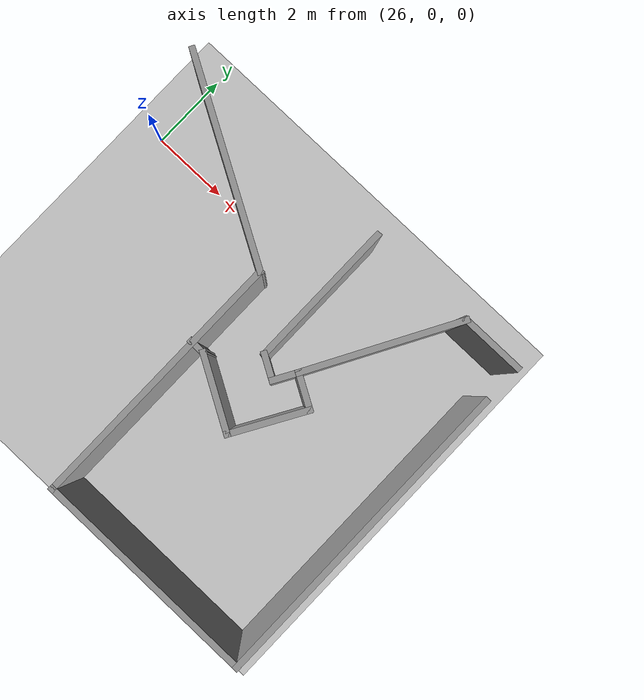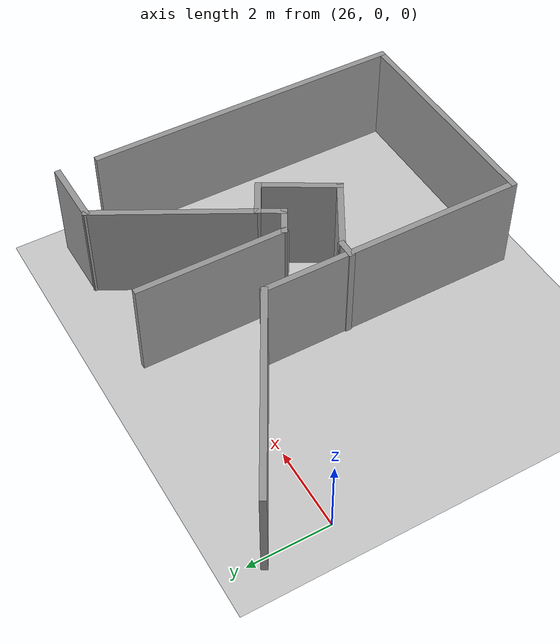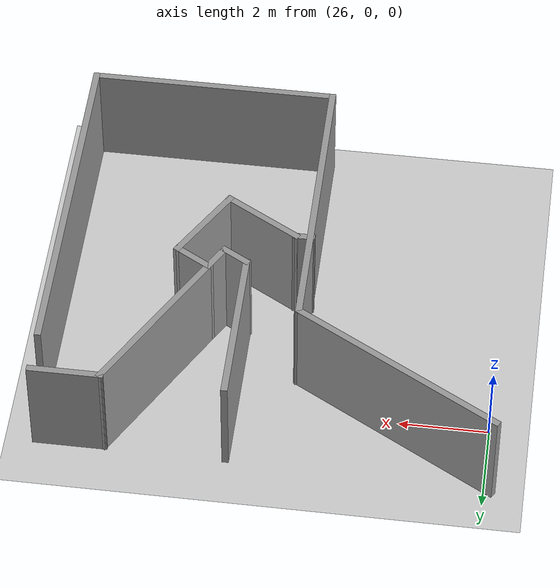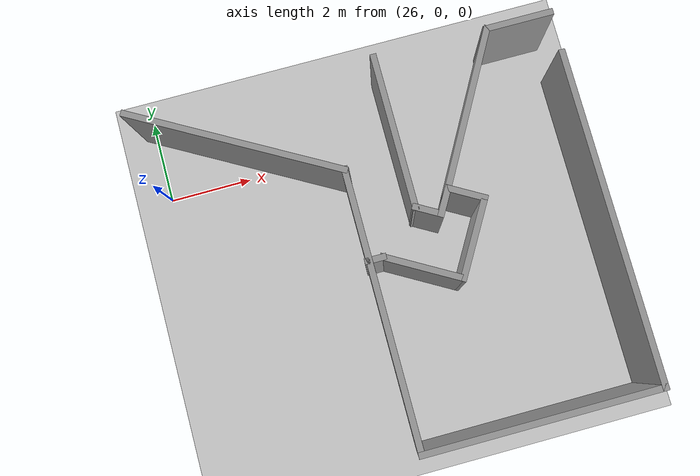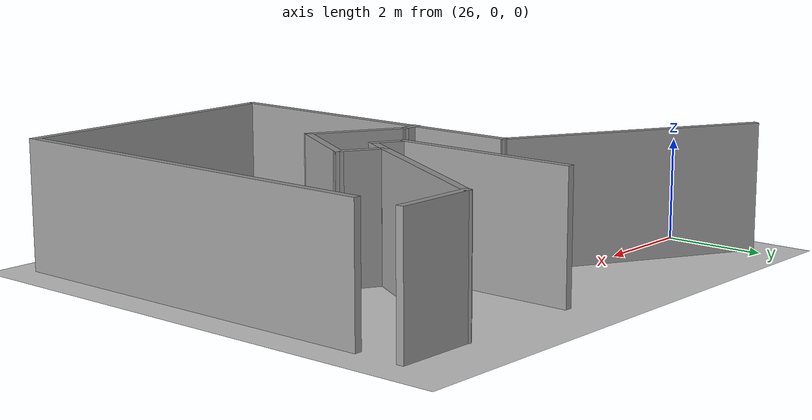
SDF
<sdf version="1.6">
 <world name="default">
  <model name="ground_plane">
   <static>1</static>
   <link name="link">
    <collision name="collision">
     <geometry><plane><normal>0 0 1</normal><size>100 100</size></plane></geometry>
     <surface>
      <contact><collide_bitmask>65535</collide_bitmask></contact>
      <friction><ode><mu>100</mu><mu2>50</mu2></ode></friction>
     </surface>
    </collision>
    <visual name="visual">
     <cast_shadows>0</cast_shadows>
     <geometry><plane><normal>0 0 1</normal><size>100 100</size></plane></geometry>
     <material>
      <script><uri>file://media/materials/scripts/gazebo.material</uri><name>Gazebo/Grey</name></script>
     </material>
    </visual>
   </link>
  </model>
  <model name="111">
   <link name="Wall_0">
    <pose>-2.74496 3.24492 0 0 0 -0.517102</pose>
    <visual name="Wall_0_Visual">
     <pose>0 0 1.25 0 -0 0</pose>
     <geometry><box><size>5.334 0.15 2.5</size></box></geometry>
     <material>
      <script><uri>file://media/materials/scripts/gazebo.material</uri><name>Gazebo/Grey</name></script>
      <ambient>1 1 1 1</ambient>
      <shader type="pixel"/>
     </material>
     <meta><layer>0</layer></meta>
    </visual>
    <collision name="Wall_0_Collision">
     <pose>0 0 1.25 0 -0 0</pose>
     <geometry><box><size>5.334 0.15 2.5</size></box></geometry>
     <surface>
      <friction>
       <ode><mu>1</mu><mu2>1</mu2><fdir1>0 0 0</fdir1><slip1>0</slip1><slip2>0</slip2></ode>
       <torsional>
        <coefficient>1</coefficient>
        <patch_radius>0</patch_radius>
        <surface_radius>0</surface_radius>
        <use_patch_radius>1</use_patch_radius>
        <ode><slip>0</slip></ode>
       </torsional>
      </friction>
      <bounce><restitution_coefficient>0</restitution_coefficient><threshold>1e+06</threshold></bounce>
      <contact>
       <collide_without_contact>0</collide_without_contact>
       <collide_without_contact_bitmask>1</collide_without_contact_bitmask>
       <collide_bitmask>1</collide_bitmask>
       <ode>
        <soft_cfm>0</soft_cfm>
        <soft_erp>0.2</soft_erp>
        <kp>1e+13</kp>
        <kd>1</kd>
        <max_vel>0.01</max_vel>
        <min_depth>0</min_depth>
       </ode>
       <bullet>
        <split_impulse>1</split_impulse>
        <split_impulse_penetration_threshold>-0.01</split_impulse_penetration_threshold>
        <soft_cfm>0</soft_cfm>
        <soft_erp>0.2</soft_erp>
        <kp>1e+13</kp>
        <kd>1</kd>
       </bullet>
      </contact>
     </surface>
    </collision>
   </link>
   <link name="Wall_1">
    <pose>-0.491663 -1.29508 0 0 0 -1.5708</pose>
    <visual name="Wall_1_Visual">
     <pose>0 0 1.25 0 -0 0</pose>
     <geometry><box><size>6.667 0.15 2.5</size></box></geometry>
     <material>
      <script><uri>file://media/materials/scripts/gazebo.material</uri><name>Gazebo/Grey</name></script>
      <ambient>1 1 1 1</ambient>
      <shader type="pixel"/>
     </material>
     <meta><layer>0</layer></meta>
    </visual>
    <collision name="Wall_1_Collision">
     <pose>0 0 1.25 0 -0 0</pose>
     <geometry><box><size>6.667 0.15 2.5</size></box></geometry>
     <surface>
      <friction>
       <ode><mu>1</mu><mu2>1</mu2><fdir1>0 0 0</fdir1><slip1>0</slip1><slip2>0</slip2></ode>
       <torsional>
        <coefficient>1</coefficient>
        <patch_radius>0</patch_radius>
        <surface_radius>0</surface_radius>
        <use_patch_radius>1</use_patch_radius>
        <ode><slip>0</slip></ode>
       </torsional>
      </friction>
      <bounce><restitution_coefficient>0</restitution_coefficient><threshold>1e+06</threshold></bounce>
      <contact>
       <collide_without_contact>0</collide_without_contact>
       <collide_without_contact_bitmask>1</collide_without_contact_bitmask>
       <collide_bitmask>1</collide_bitmask>
       <ode>
        <soft_cfm>0</soft_cfm>
        <soft_erp>0.2</soft_erp>
        <kp>1e+13</kp>
        <kd>1</kd>
        <max_vel>0.01</max_vel>
        <min_depth>0</min_depth>
       </ode>
       <bullet>
        <split_impulse>1</split_impulse>
        <split_impulse_penetration_threshold>-0.01</split_impulse_penetration_threshold>
        <soft_cfm>0</soft_cfm>
        <soft_erp>0.2</soft_erp>
        <kp>1e+13</kp>
        <kd>1</kd>
       </bullet>
      </contact>
     </surface>
    </collision>
   </link>
   <link name="Wall_11">
    <pose>1.4895 0.680199 0 0 0 -2.0944</pose>
    <visual name="Wall_11_Visual">
     <pose>0 0 1.25 0 -0 0</pose>
     <geometry><box><size>0.75 0.15 2.5</size></box></geometry>
     <material>
      <script><uri>file://media/materials/scripts/gazebo.material</uri><name>Gazebo/Grey</name></script>
      <ambient>1 1 1 1</ambient>
      <shader type="pixel"/>
     </material>
     <meta><layer>0</layer></meta>
    </visual>
    <collision name="Wall_11_Collision">
     <pose>0 0 1.25 0 -0 0</pose>
     <geometry><box><size>0.75 0.15 2.5</size></box></geometry>
     <surface>
      <friction>
       <ode><mu>1</mu><mu2>1</mu2><fdir1>0 0 0</fdir1><slip1>0</slip1><slip2>0</slip2></ode>
       <torsional>
        <coefficient>1</coefficient>
        <patch_radius>0</patch_radius>
        <surface_radius>0</surface_radius>
        <use_patch_radius>1</use_patch_radius>
        <ode><slip>0</slip></ode>
       </torsional>
      </friction>
      <bounce><restitution_coefficient>0</restitution_coefficient><threshold>1e+06</threshold></bounce>
      <contact>
       <collide_without_contact>0</collide_without_contact>
       <collide_without_contact_bitmask>1</collide_without_contact_bitmask>
       <collide_bitmask>1</collide_bitmask>
       <ode>
        <soft_cfm>0</soft_cfm>
        <soft_erp>0.2</soft_erp>
        <kp>1e+13</kp>
        <kd>1</kd>
        <max_vel>0.01</max_vel>
        <min_depth>0</min_depth>
       </ode>
       <bullet>
        <split_impulse>1</split_impulse>
        <split_impulse_penetration_threshold>-0.01</split_impulse_penetration_threshold>
        <soft_cfm>0</soft_cfm>
        <soft_erp>0.2</soft_erp>
        <kp>1e+13</kp>
        <kd>1</kd>
       </bullet>
      </contact>
     </surface>
    </collision>
   </link>
   <link name="Wall_12">
    <pose>1.07969 0.570391 0 0 -0 2.61799</pose>
    <visual name="Wall_12_Visual">
     <pose>0 0 1.25 0 -0 0</pose>
     <geometry><box><size>0.75 0.15 2.5</size></box></geometry>
     <material>
      <script><uri>file://media/materials/scripts/gazebo.material</uri><name>Gazebo/Grey</name></script>
      <ambient>1 1 1 1</ambient>
      <shader type="pixel"/>
     </material>
     <meta><layer>0</layer></meta>
    </visual>
    <collision name="Wall_12_Collision">
     <pose>0 0 1.25 0 -0 0</pose>
     <geometry><box><size>0.75 0.15 2.5</size></box></geometry>
     <surface>
      <friction>
       <ode><mu>1</mu><mu2>1</mu2><fdir1>0 0 0</fdir1><slip1>0</slip1><slip2>0</slip2></ode>
       <torsional>
        <coefficient>1</coefficient>
        <patch_radius>0</patch_radius>
        <surface_radius>0</surface_radius>
        <use_patch_radius>1</use_patch_radius>
        <ode><slip>0</slip></ode>
       </torsional>
      </friction>
      <bounce><restitution_coefficient>0</restitution_coefficient><threshold>1e+06</threshold></bounce>
      <contact>
       <collide_without_contact>0</collide_without_contact>
       <collide_without_contact_bitmask>1</collide_without_contact_bitmask>
       <collide_bitmask>1</collide_bitmask>
       <ode>
        <soft_cfm>0</soft_cfm>
        <soft_erp>0.2</soft_erp>
        <kp>1e+13</kp>
        <kd>1</kd>
        <max_vel>0.01</max_vel>
        <min_depth>0</min_depth>
       </ode>
       <bullet>
        <split_impulse>1</split_impulse>
        <split_impulse_penetration_threshold>-0.01</split_impulse_penetration_threshold>
        <soft_cfm>0</soft_cfm>
        <soft_erp>0.2</soft_erp>
        <kp>1e+13</kp>
        <kd>1</kd>
       </bullet>
      </contact>
     </surface>
    </collision>
   </link>
   <link name="Wall_13">
    <pose>0.81988 2.52039 0 0 -0 1.5708</pose>
    <visual name="Wall_13_Visual">
     <pose>0 0 1.25 0 -0 0</pose>
     <geometry><box><size>3.75 0.15 2.5</size></box></geometry>
     <material>
      <script><uri>file://media/materials/scripts/gazebo.material</uri><name>Gazebo/Grey</name></script>
      <ambient>1 1 1 1</ambient>
      <shader type="pixel"/>
     </material>
     <meta><layer>0</layer></meta>
    </visual>
    <collision name="Wall_13_Collision">
     <pose>0 0 1.25 0 -0 0</pose>
     <geometry><box><size>3.75 0.15 2.5</size></box></geometry>
     <surface>
      <friction>
       <ode><mu>1</mu><mu2>1</mu2><fdir1>0 0 0</fdir1><slip1>0</slip1><slip2>0</slip2></ode>
       <torsional>
        <coefficient>1</coefficient>
        <patch_radius>0</patch_radius>
        <surface_radius>0</surface_radius>
        <use_patch_radius>1</use_patch_radius>
        <ode><slip>0</slip></ode>
       </torsional>
      </friction>
      <bounce><restitution_coefficient>0</restitution_coefficient><threshold>1e+06</threshold></bounce>
      <contact>
       <collide_without_contact>0</collide_without_contact>
       <collide_without_contact_bitmask>1</collide_without_contact_bitmask>
       <collide_bitmask>1</collide_bitmask>
       <ode>
        <soft_cfm>0</soft_cfm>
        <soft_erp>0.2</soft_erp>
        <kp>1e+13</kp>
        <kd>1</kd>
        <max_vel>0.01</max_vel>
        <min_depth>0</min_depth>
       </ode>
       <bullet>
        <split_impulse>1</split_impulse>
        <split_impulse_penetration_threshold>-0.01</split_impulse_penetration_threshold>
        <soft_cfm>0</soft_cfm>
        <soft_erp>0.2</soft_erp>
        <kp>1e+13</kp>
        <kd>1</kd>
       </bullet>
      </contact>
     </surface>
    </collision>
   </link>
   <link name="Wall_15">
    <pose>5.02534 -0.628578 0 0 -0 1.5708</pose>
    <visual name="Wall_15_Visual">
     <pose>0 0 1.25 0 -0 0</pose>
     <geometry><box><size>8 0.15 2.5</size></box></geometry>
     <material>
      <script><uri>file://media/materials/scripts/gazebo.material</uri><name>Gazebo/Grey</name></script>
      <ambient>1 1 1 1</ambient>
      <shader type="pixel"/>
     </material>
     <meta><layer>0</layer></meta>
    </visual>
    <collision name="Wall_15_Collision">
     <pose>0 0 1.25 0 -0 0</pose>
     <geometry><box><size>8 0.15 2.5</size></box></geometry>
     <surface>
      <friction>
       <ode><mu>1</mu><mu2>1</mu2><fdir1>0 0 0</fdir1><slip1>0</slip1><slip2>0</slip2></ode>
       <torsional>
        <coefficient>1</coefficient>
        <patch_radius>0</patch_radius>
        <surface_radius>0</surface_radius>
        <use_patch_radius>1</use_patch_radius>
        <ode><slip>0</slip></ode>
       </torsional>
      </friction>
      <bounce><restitution_coefficient>0</restitution_coefficient><threshold>1e+06</threshold></bounce>
      <contact>
       <collide_without_contact>0</collide_without_contact>
       <collide_without_contact_bitmask>1</collide_without_contact_bitmask>
       <collide_bitmask>1</collide_bitmask>
       <ode>
        <soft_cfm>0</soft_cfm>
        <soft_erp>0.2</soft_erp>
        <kp>1e+13</kp>
        <kd>1</kd>
        <max_vel>0.01</max_vel>
        <min_depth>0</min_depth>
       </ode>
       <bullet>
        <split_impulse>1</split_impulse>
        <split_impulse_penetration_threshold>-0.01</split_impulse_penetration_threshold>
        <soft_cfm>0</soft_cfm>
        <soft_erp>0.2</soft_erp>
        <kp>1e+13</kp>
        <kd>1</kd>
       </bullet>
      </contact>
     </surface>
    </collision>
   </link>
   <link name="Wall_2">
    <pose>2.26684 -4.55358 0 0 -0 0</pose>
    <visual name="Wall_2_Visual">
     <pose>0 0 1.25 0 -0 0</pose>
     <geometry><box><size>5.667 0.15 2.5</size></box></geometry>
     <material>
      <script><uri>file://media/materials/scripts/gazebo.material</uri><name>Gazebo/Grey</name></script>
      <ambient>1 1 1 1</ambient>
      <shader type="pixel"/>
     </material>
     <meta><layer>0</layer></meta>
    </visual>
    <collision name="Wall_2_Collision">
     <pose>0 0 1.25 0 -0 0</pose>
     <geometry><box><size>5.667 0.15 2.5</size></box></geometry>
     <surface>
      <friction>
       <ode><mu>1</mu><mu2>1</mu2><fdir1>0 0 0</fdir1><slip1>0</slip1><slip2>0</slip2></ode>
       <torsional>
        <coefficient>1</coefficient>
        <patch_radius>0</patch_radius>
        <surface_radius>0</surface_radius>
        <use_patch_radius>1</use_patch_radius>
        <ode><slip>0</slip></ode>
       </torsional>
      </friction>
      <bounce><restitution_coefficient>0</restitution_coefficient><threshold>1e+06</threshold></bounce>
      <contact>
       <collide_without_contact>0</collide_without_contact>
       <collide_without_contact_bitmask>1</collide_without_contact_bitmask>
       <collide_bitmask>1</collide_bitmask>
       <ode>
        <soft_cfm>0</soft_cfm>
        <soft_erp>0.2</soft_erp>
        <kp>1e+13</kp>
        <kd>1</kd>
        <max_vel>0.01</max_vel>
        <min_depth>0</min_depth>
       </ode>
       <bullet>
        <split_impulse>1</split_impulse>
        <split_impulse_penetration_threshold>-0.01</split_impulse_penetration_threshold>
        <soft_cfm>0</soft_cfm>
        <soft_erp>0.2</soft_erp>
        <kp>1e+13</kp>
        <kd>1</kd>
       </bullet>
      </contact>
     </surface>
    </collision>
   </link>
   <link name="Wall_4">
    <pose>4.26684 4.29642 0 0 -0 3.14159</pose>
    <visual name="Wall_4_Visual">
     <pose>0 0 1.25 0 -0 0</pose>
     <geometry><box><size>1.667 0.15 2.5</size></box></geometry>
     <material>
      <script><uri>file://media/materials/scripts/gazebo.material</uri><name>Gazebo/Grey</name></script>
      <ambient>1 1 1 1</ambient>
      <shader type="pixel"/>
     </material>
     <meta><layer>0</layer></meta>
    </visual>
    <collision name="Wall_4_Collision">
     <pose>0 0 1.25 0 -0 0</pose>
     <geometry><box><size>1.667 0.15 2.5</size></box></geometry>
     <surface>
      <friction>
       <ode><mu>1</mu><mu2>1</mu2><fdir1>0 0 0</fdir1><slip1>0</slip1><slip2>0</slip2></ode>
       <torsional>
        <coefficient>1</coefficient>
        <patch_radius>0</patch_radius>
        <surface_radius>0</surface_radius>
        <use_patch_radius>1</use_patch_radius>
        <ode><slip>0</slip></ode>
       </torsional>
      </friction>
      <bounce><restitution_coefficient>0</restitution_coefficient><threshold>1e+06</threshold></bounce>
      <contact>
       <collide_without_contact>0</collide_without_contact>
       <collide_without_contact_bitmask>1</collide_without_contact_bitmask>
       <collide_bitmask>1</collide_bitmask>
       <ode>
        <soft_cfm>0</soft_cfm>
        <soft_erp>0.2</soft_erp>
        <kp>1e+13</kp>
        <kd>1</kd>
        <max_vel>0.01</max_vel>
        <min_depth>0</min_depth>
       </ode>
       <bullet>
        <split_impulse>1</split_impulse>
        <split_impulse_penetration_threshold>-0.01</split_impulse_penetration_threshold>
        <soft_cfm>0</soft_cfm>
        <soft_erp>0.2</soft_erp>
        <kp>1e+13</kp>
        <kd>1</kd>
       </bullet>
      </contact>
     </surface>
    </collision>
   </link>
   <link name="Wall_5">
    <pose>2.57392 2.61821 0 0 0 -2.07884</pose>
    <visual name="Wall_5_Visual">
     <pose>0 0 1.25 0 -0 0</pose>
     <geometry><box><size>3.99163 0.15 2.5</size></box></geometry>
     <material>
      <script><uri>file://media/materials/scripts/gazebo.material</uri><name>Gazebo/Grey</name></script>
      <ambient>1 1 1 1</ambient>
      <shader type="pixel"/>
     </material>
     <meta><layer>0</layer></meta>
    </visual>
    <collision name="Wall_5_Collision">
     <pose>0 0 1.25 0 -0 0</pose>
     <geometry><box><size>3.99163 0.15 2.5</size></box></geometry>
     <surface>
      <friction>
       <ode><mu>1</mu><mu2>1</mu2><fdir1>0 0 0</fdir1><slip1>0</slip1><slip2>0</slip2></ode>
       <torsional>
        <coefficient>1</coefficient>
        <patch_radius>0</patch_radius>
        <surface_radius>0</surface_radius>
        <use_patch_radius>1</use_patch_radius>
        <ode><slip>0</slip></ode>
       </torsional>
      </friction>
      <bounce><restitution_coefficient>0</restitution_coefficient><threshold>1e+06</threshold></bounce>
      <contact>
       <collide_without_contact>0</collide_without_contact>
       <collide_without_contact_bitmask>1</collide_without_contact_bitmask>
       <collide_bitmask>1</collide_bitmask>
       <ode>
        <soft_cfm>0</soft_cfm>
        <soft_erp>0.2</soft_erp>
        <kp>1e+13</kp>
        <kd>1</kd>
        <max_vel>0.01</max_vel>
        <min_depth>0</min_depth>
       </ode>
       <bullet>
        <split_impulse>1</split_impulse>
        <split_impulse_penetration_threshold>-0.01</split_impulse_penetration_threshold>
        <soft_cfm>0</soft_cfm>
        <soft_erp>0.2</soft_erp>
        <kp>1e+13</kp>
        <kd>1</kd>
       </bullet>
      </contact>
     </surface>
    </collision>
   </link>
   <link name="Wall_6">
    <pose>2.00755 0.727507 0 0 0 -0.523599</pose>
    <visual name="Wall_6_Visual">
     <pose>0 0 1.25 0 -0 0</pose>
     <geometry><box><size>1 0.15 2.5</size></box></geometry>
     <material>
      <script><uri>file://media/materials/scripts/gazebo.material</uri><name>Gazebo/Grey</name></script>
      <ambient>1 1 1 1</ambient>
      <shader type="pixel"/>
     </material>
     <meta><layer>0</layer></meta>
    </visual>
    <collision name="Wall_6_Collision">
     <pose>0 0 1.25 0 -0 0</pose>
     <geometry><box><size>1 0.15 2.5</size></box></geometry>
     <surface>
      <friction>
       <ode><mu>1</mu><mu2>1</mu2><fdir1>0 0 0</fdir1><slip1>0</slip1><slip2>0</slip2></ode>
       <torsional>
        <coefficient>1</coefficient>
        <patch_radius>0</patch_radius>
        <surface_radius>0</surface_radius>
        <use_patch_radius>1</use_patch_radius>
        <ode><slip>0</slip></ode>
       </torsional>
      </friction>
      <bounce><restitution_coefficient>0</restitution_coefficient><threshold>1e+06</threshold></bounce>
      <contact>
       <collide_without_contact>0</collide_without_contact>
       <collide_without_contact_bitmask>1</collide_without_contact_bitmask>
       <collide_bitmask>1</collide_bitmask>
       <ode>
        <soft_cfm>0</soft_cfm>
        <soft_erp>0.2</soft_erp>
        <kp>1e+13</kp>
        <kd>1</kd>
        <max_vel>0.01</max_vel>
        <min_depth>0</min_depth>
       </ode>
       <bullet>
        <split_impulse>1</split_impulse>
        <split_impulse_penetration_threshold>-0.01</split_impulse_penetration_threshold>
        <soft_cfm>0</soft_cfm>
        <soft_erp>0.2</soft_erp>
        <kp>1e+13</kp>
        <kd>1</kd>
       </bullet>
      </contact>
     </surface>
    </collision>
   </link>
   <link name="Wall_7">
    <pose>1.90261 -0.293216 0 0 0 -2.1003</pose>
    <visual name="Wall_7_Visual">
     <pose>0 0 1.25 0 -0 0</pose>
     <geometry><box><size>2.02292 0.15 2.5</size></box></geometry>
     <material>
      <script><uri>file://media/materials/scripts/gazebo.material</uri><name>Gazebo/Grey</name></script>
      <ambient>1 1 1 1</ambient>
      <shader type="pixel"/>
     </material>
     <meta><layer>0</layer></meta>
    </visual>
    <collision name="Wall_7_Collision">
     <pose>0 0 1.25 0 -0 0</pose>
     <geometry><box><size>2.02292 0.15 2.5</size></box></geometry>
     <surface>
      <friction>
       <ode><mu>1</mu><mu2>1</mu2><fdir1>0 0 0</fdir1><slip1>0</slip1><slip2>0</slip2></ode>
       <torsional>
        <coefficient>1</coefficient>
        <patch_radius>0</patch_radius>
        <surface_radius>0</surface_radius>
        <use_patch_radius>1</use_patch_radius>
        <ode><slip>0</slip></ode>
       </torsional>
      </friction>
      <bounce><restitution_coefficient>0</restitution_coefficient><threshold>1e+06</threshold></bounce>
      <contact>
       <collide_without_contact>0</collide_without_contact>
       <collide_without_contact_bitmask>1</collide_without_contact_bitmask>
       <collide_bitmask>1</collide_bitmask>
       <ode>
        <soft_cfm>0</soft_cfm>
        <soft_erp>0.2</soft_erp>
        <kp>1e+13</kp>
        <kd>1</kd>
        <max_vel>0.01</max_vel>
        <min_depth>0</min_depth>
       </ode>
       <bullet>
        <split_impulse>1</split_impulse>
        <split_impulse_penetration_threshold>-0.01</split_impulse_penetration_threshold>
        <soft_cfm>0</soft_cfm>
        <soft_erp>0.2</soft_erp>
        <kp>1e+13</kp>
        <kd>1</kd>
       </bullet>
      </contact>
     </surface>
    </collision>
   </link>
   <link name="Wall_8">
    <pose>0.628527 -0.638939 0 0 -0 2.61799</pose>
    <visual name="Wall_8_Visual">
     <pose>0 0 1.25 0 -0 0</pose>
     <geometry><box><size>2 0.15 2.5</size></box></geometry>
     <material>
      <script><uri>file://media/materials/scripts/gazebo.material</uri><name>Gazebo/Grey</name></script>
      <ambient>1 1 1 1</ambient>
      <shader type="pixel"/>
     </material>
     <meta><layer>0</layer></meta>
    </visual>
    <collision name="Wall_8_Collision">
     <pose>0 0 1.25 0 -0 0</pose>
     <geometry><box><size>2 0.15 2.5</size></box></geometry>
     <surface>
      <friction>
       <ode><mu>1</mu><mu2>1</mu2><fdir1>0 0 0</fdir1><slip1>0</slip1><slip2>0</slip2></ode>
       <torsional>
        <coefficient>1</coefficient>
        <patch_radius>0</patch_radius>
        <surface_radius>0</surface_radius>
        <use_patch_radius>1</use_patch_radius>
        <ode><slip>0</slip></ode>
       </torsional>
      </friction>
      <bounce><restitution_coefficient>0</restitution_coefficient><threshold>1e+06</threshold></bounce>
      <contact>
       <collide_without_contact>0</collide_without_contact>
       <collide_without_contact_bitmask>1</collide_without_contact_bitmask>
       <collide_bitmask>1</collide_bitmask>
       <ode>
        <soft_cfm>0</soft_cfm>
        <soft_erp>0.2</soft_erp>
        <kp>1e+13</kp>
        <kd>1</kd>
        <max_vel>0.01</max_vel>
        <min_depth>0</min_depth>
       </ode>
       <bullet>
        <split_impulse>1</split_impulse>
        <split_impulse_penetration_threshold>-0.01</split_impulse_penetration_threshold>
        <soft_cfm>0</soft_cfm>
        <soft_erp>0.2</soft_erp>
        <kp>1e+13</kp>
        <kd>1</kd>
       </bullet>
      </contact>
     </surface>
    </collision>
   </link>
   <link name="Wall_9">
    <pose>-0.347548 -0.176439 0 0 -0 3.14159</pose>
    <visual name="Wall_9_Visual">
     <pose>0 0 1.25 0 -0 0</pose>
     <geometry><box><size>0.5 0.15 2.5</size></box></geometry>
     <material>
      <script><uri>file://media/materials/scripts/gazebo.material</uri><name>Gazebo/Grey</name></script>
      <ambient>1 1 1 1</ambient>
      <shader type="pixel"/>
     </material>
     <meta><layer>0</layer></meta>
    </visual>
    <collision name="Wall_9_Collision">
     <pose>0 0 1.25 0 -0 0</pose>
     <geometry><box><size>0.5 0.15 2.5</size></box></geometry>
     <surface>
      <friction>
       <ode><mu>1</mu><mu2>1</mu2><fdir1>0 0 0</fdir1><slip1>0</slip1><slip2>0</slip2></ode>
       <torsional>
        <coefficient>1</coefficient>
        <patch_radius>0</patch_radius>
        <surface_radius>0</surface_radius>
        <use_patch_radius>1</use_patch_radius>
        <ode><slip>0</slip></ode>
       </torsional>
      </friction>
      <bounce><restitution_coefficient>0</restitution_coefficient><threshold>1e+06</threshold></bounce>
      <contact>
       <collide_without_contact>0</collide_without_contact>
       <collide_without_contact_bitmask>1</collide_without_contact_bitmask>
       <collide_bitmask>1</collide_bitmask>
       <ode>
        <soft_cfm>0</soft_cfm>
        <soft_erp>0.2</soft_erp>
        <kp>1e+13</kp>
        <kd>1</kd>
        <max_vel>0.01</max_vel>
        <min_depth>0</min_depth>
       </ode>
       <bullet>
        <split_impulse>1</split_impulse>
        <split_impulse_penetration_threshold>-0.01</split_impulse_penetration_threshold>
        <soft_cfm>0</soft_cfm>
        <soft_erp>0.2</soft_erp>
        <kp>1e+13</kp>
        <kd>1</kd>
       </bullet>
      </contact>
     </surface>
    </collision>
   </link>
   <static>1</static>
   <pose>30.8367 -2.85469 0 0 -0 0</pose>
  </model>
 </world>
</sdf>
